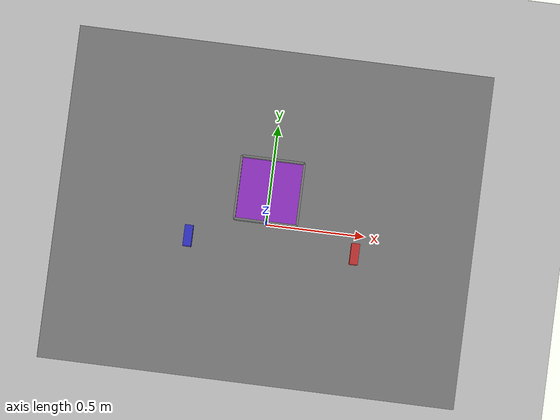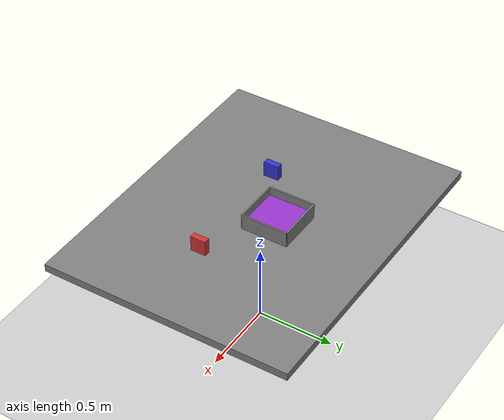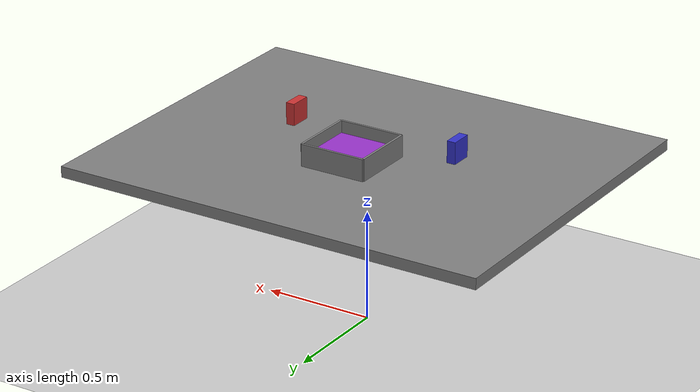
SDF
<sdf version="1.7">
 <world name="default">
  <light name="sun" type="directional">
   <pose>0 0 10 0 -0 0</pose>
   <diffuse>0.8 0.8 0.8 1</diffuse>
   <specular>0.2 0.2 0.2 1</specular>
   <attenuation>
    <range>1000</range>
    <constant>0.9</constant>
    <linear>0.01</linear>
    <quadratic>0.001</quadratic>
   </attenuation>
   <direction>-0.5 0.1 -0.9</direction>
   <spot><inner_angle>0</inner_angle><outer_angle>0</outer_angle><falloff>0</falloff></spot>
  </light>
  <plugin name="gazebo_link_attacher" filename="libgazebo_link_attacher.so"/>
  <model name="target_plate1564897">
   <pose>-0.35637 -0.138 0.825 0 0 0</pose>
   <static>0</static>
   <link name="link_left">
    <collision name="collision">
     <geometry><box><size>0.04 0.1 0.1</size></box></geometry>
     <surface>
      <friction><ode><mu>1.0</mu><mu2>1.0</mu2></ode></friction>
      <contact><ode><kp>1e+5</kp><kd>100</kd></ode></contact>
     </surface>
    </collision>
    <visual name="visual">
     <geometry><box><size>0.04 0.1 0.1</size></box></geometry>
     <material>
      <ambient>0.2 0.2 0.8 1</ambient>
      <diffuse>0.2 0.2 0.8 1</diffuse>
      <specular>0.1 0.1 0.1 1</specular>
     </material>
    </visual>
    <inertial>
     <mass>0.2</mass>
     <inertia><ixx>0.00033</ixx><ixy>0</ixy><ixz>0</ixz><iyy>0.00017</iyy><iyz>0</iyz><izz>0.00017</izz></inertia>
    </inertial>
   </link>
  </model>
  <model name="target_plate_new">
   <pose>0.43915 -0.12652 0.825 0 0 0</pose>
   <static>0</static>
   <link name="link_right">
    <collision name="collision">
     <geometry><box><size>0.04 0.1 0.1</size></box></geometry>
     <surface>
      <friction><ode><mu>1.0</mu><mu2>1.0</mu2></ode></friction>
      <contact><ode><kp>1e+5</kp><kd>100</kd></ode></contact>
     </surface>
    </collision>
    <visual name="visual">
     <geometry><box><size>0.04 0.1 0.1</size></box></geometry>
     <material>
      <ambient>0.8 0.2 0.2 1</ambient>
      <diffuse>0.8 0.2 0.2 1</diffuse>
      <specular>0.1 0.1 0.1 1</specular>
     </material>
    </visual>
    <inertial>
     <mass>0.2</mass>
     <inertia><ixx>0.00033</ixx><ixy>0</ixy><ixz>0</ixz><iyy>0.00017</iyy><iyz>0</iyz><izz>0.00017</izz></inertia>
    </inertial>
   </link>
  </model>
  <model name="table_link">
   <pose>0 0 0.75 0 0 0</pose>
   <static>1</static>
   <link name="link">
    <collision name="collision">
     <geometry><box><size>2.0 1.6 0.05</size></box></geometry>
     <surface>
      <friction><ode><mu>100</mu><mu2>100</mu2></ode></friction>
      <contact><ode><kp>1e+5</kp><kd>100</kd></ode></contact>
     </surface>
    </collision>
    <visual name="visual">
     <geometry><box><size>2.0 1.6 0.05</size></box></geometry>
     <material>
      <ambient>0.5 0.5 0.5 1</ambient>
      <diffuse>0.5 0.5 0.5 1</diffuse>
      <specular>0.1 0.1 0.1 1</specular>
     </material>
    </visual>
    <inertial>
     <mass>10.0</mass>
     <inertia><ixx>1.0</ixx><ixy>0.0</ixy><ixz>0.0</ixz><iyy>1.0</iyy><iyz>0.0</iyz><izz>1.0</izz></inertia>
    </inertial>
   </link>
  </model>
  <model name="five_part_box_container">
   <pose>0 0.12 0.825 0 0 0</pose>
   <static>1</static>
   <link name="base_plate">
    <pose>0 0 -0.005 0 0 0</pose>
    <collision name="collision_base">
     <geometry><box><size>0.3 0.3 0.01</size></box></geometry>
     <surface>
      <friction><ode><mu>1.0</mu><mu2>1.0</mu2></ode></friction>
      <contact><ode><kp>1e+5</kp><kd>100</kd></ode></contact>
     </surface>
    </collision>
    <visual name="visual_base">
     <geometry><box><size>0.3 0.3 0.01</size></box></geometry>
     <material>
      <ambient>0.6 0.2 0.8 1</ambient>
      <diffuse>0.6 0.2 0.8 1</diffuse>
      <specular>0.2 0.2 0.2 1</specular>
     </material>
    </visual>
    <inertial>
     <mass>0.5</mass>
     <inertia><ixx>0.005</ixx><ixy>0</ixy><ixz>0</ixz><iyy>0.005</iyy><iyz>0</iyz><izz>0.005</izz></inertia>
    </inertial>
   </link>
   <link name="left_wall">
    <pose>-0.15 0 0.005 0 0 0</pose>
    <collision name="collision_left">
     <geometry><box><size>0.01 0.3 0.1</size></box></geometry>
     <surface>
      <friction><ode><mu>1.0</mu><mu2>1.0</mu2></ode></friction>
      <contact><ode><kp>1e+5</kp><kd>100</kd></ode></contact>
     </surface>
    </collision>
    <visual name="visual_left">
     <geometry><box><size>0.01 0.3 0.1</size></box></geometry>
     <material>
      <ambient>0.5 0.5 0.5 1</ambient>
      <diffuse>0.5 0.5 0.5 1</diffuse>
      <specular>0.1 0.1 0.1 1</specular>
     </material>
    </visual>
    <inertial>
     <mass>0.1</mass>
     <inertia><ixx>0.001</ixx><ixy>0</ixy><ixz>0</ixz><iyy>0.001</iyy><iyz>0</iyz><izz>0.001</izz></inertia>
    </inertial>
   </link>
   <link name="right_wall">
    <pose>0.15 0 0.005 0 0 0</pose>
    <collision name="collision_right">
     <geometry><box><size>0.01 0.3 0.1</size></box></geometry>
     <surface>
      <friction><ode><mu>1.0</mu><mu2>1.0</mu2></ode></friction>
      <contact><ode><kp>1e+5</kp><kd>100</kd></ode></contact>
     </surface>
    </collision>
    <visual name="visual_right">
     <geometry><box><size>0.01 0.3 0.1</size></box></geometry>
     <material>
      <ambient>0.5 0.5 0.5 1</ambient>
      <diffuse>0.5 0.5 0.5 1</diffuse>
      <specular>0.1 0.1 0.1 1</specular>
     </material>
    </visual>
    <inertial>
     <mass>0.1</mass>
     <inertia><ixx>0.001</ixx><ixy>0</ixy><ixz>0</ixz><iyy>0.001</iyy><iyz>0</iyz><izz>0.001</izz></inertia>
    </inertial>
   </link>
   <link name="front_wall">
    <pose>0 -0.15 0.005 0 0 0</pose>
    <collision name="collision_front">
     <geometry><box><size>0.3 0.01 0.1</size></box></geometry>
     <surface>
      <friction><ode><mu>1.0</mu><mu2>1.0</mu2></ode></friction>
      <contact><ode><kp>1e+5</kp><kd>100</kd></ode></contact>
     </surface>
    </collision>
    <visual name="visual_front">
     <geometry><box><size>0.3 0.01 0.1</size></box></geometry>
     <material>
      <ambient>0.5 0.5 0.5 1</ambient>
      <diffuse>0.5 0.5 0.5 1</diffuse>
      <specular>0.1 0.1 0.1 1</specular>
     </material>
    </visual>
    <inertial>
     <mass>0.1</mass>
     <inertia><ixx>0.001</ixx><ixy>0</ixy><ixz>0</ixz><iyy>0.001</iyy><iyz>0</iyz><izz>0.001</izz></inertia>
    </inertial>
   </link>
   <link name="back_wall">
    <pose>0 0.15 0.005 0 0 0</pose>
    <collision name="collision_back">
     <geometry><box><size>0.3 0.01 0.1</size></box></geometry>
     <surface>
      <friction><ode><mu>1.0</mu><mu2>1.0</mu2></ode></friction>
      <contact><ode><kp>1e+5</kp><kd>100</kd></ode></contact>
     </surface>
    </collision>
    <visual name="visual_back">
     <geometry><box><size>0.3 0.01 0.1</size></box></geometry>
     <material>
      <ambient>0.5 0.5 0.5 1</ambient>
      <diffuse>0.5 0.5 0.5 1</diffuse>
      <specular>0.1 0.1 0.1 1</specular>
     </material>
    </visual>
    <inertial>
     <mass>0.1</mass>
     <inertia><ixx>0.001</ixx><ixy>0</ixy><ixz>0</ixz><iyy>0.001</iyy><iyz>0</iyz><izz>0.001</izz></inertia>
    </inertial>
   </link>
  </model>
  <model name="ground_plane">
   <static>1</static>
   <link name="link">
    <collision name="collision">
     <geometry><plane><normal>0 0 1</normal><size>100 100</size></plane></geometry>
     <surface>
      <contact><collide_bitmask>65535</collide_bitmask></contact>
      <friction><ode><mu>100</mu><mu2>50</mu2></ode></friction>
     </surface>
    </collision>
    <visual name="visual">
     <cast_shadows>0</cast_shadows>
     <geometry><plane><normal>0 0 1</normal><size>100 100</size></plane></geometry>
     <material>
      <script>
       <uri>file:///home/gpu/simulate6666/0_world-launch/src/launchworld/media/materials/scripts/gazebo.material</uri>
       <name>Gazebo/Grey</name>
      </script>
     </material>
    </visual>
   </link>
  </model>
  <gravity>0 0 -9.8</gravity>
  <magnetic_field>6e-06 2.3e-05 -4.2e-05</magnetic_field>
  <atmosphere type="adiabatic"/>
  <physics type="ode">
   <max_step_size>0.001</max_step_size>
   <real_time_factor>1</real_time_factor>
   <real_time_update_rate>1000</real_time_update_rate>
  </physics>
  <scene><ambient>0.4 0.4 0.4 1</ambient><background>0.7 0.7 0.7 1</background><shadows>1</shadows></scene>
  <audio><device>default</device></audio>
  <spherical_coordinates>
   <surface_model>EARTH_WGS84</surface_model>
   <latitude_deg>0</latitude_deg>
   <longitude_deg>0</longitude_deg>
   <elevation>0</elevation>
   <heading_deg>0</heading_deg>
  </spherical_coordinates>
 </world>
</sdf>
